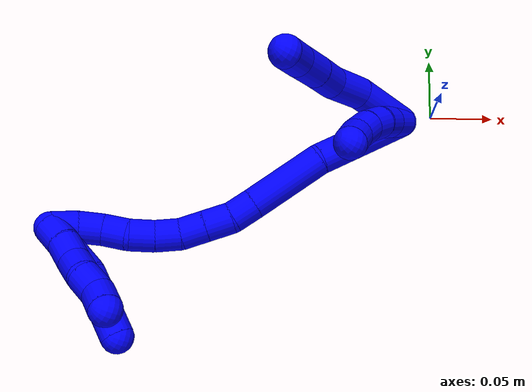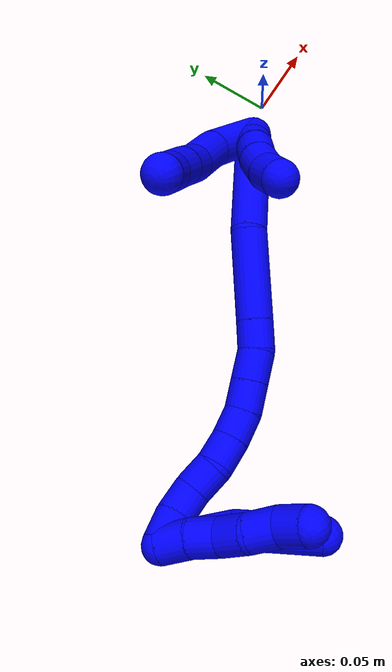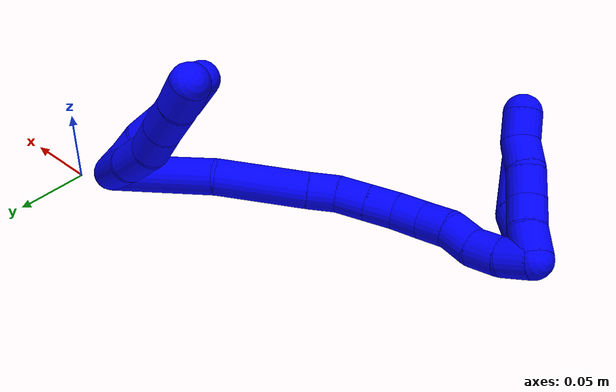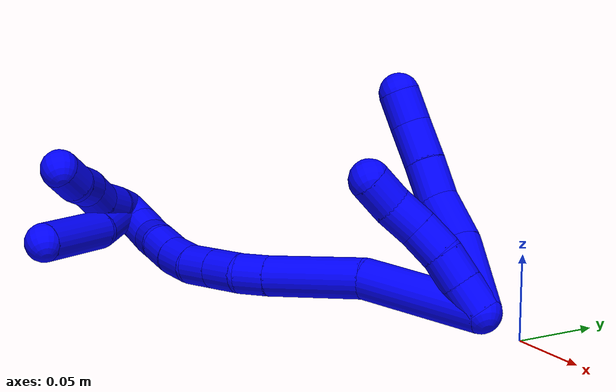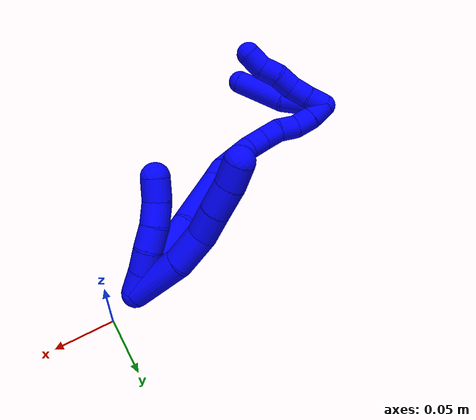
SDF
<sdf version="1.7">
 <world name="default">
  <model name="1">
   <static>0</static>
   <link name="1">
    <collision name="collision-cylinder-e_1_2_8">
     <pose>0.001061 0.001206 0.024429 -0.049325 0.043352 -0.00107</pose>
     <geometry><cylinder><radius>0.0125</radius><length>0.048963</length></cylinder></geometry>
     <surface>
      <friction><ode><mu>1.16</mu><mu2>1.16</mu2><slip1>0</slip1><slip2>0</slip2></ode></friction>
      <contact><ode><kp>1e+06</kp><kd>1</kd><max_vel>0</max_vel><min_depth>0.001</min_depth></ode></contact>
     </surface>
    </collision>
    <visual name="visual-cylinder-e_1_2_8">
     <pose>0.001061 0.001206 0.024429 -0.049325 0.043352 -0.00107</pose>
     <geometry><cylinder><radius>0.0125</radius><length>0.048963</length></cylinder></geometry>
     <material><ambient>0 0 1 1</ambient></material>
    </visual>
    <collision name="collision-cylinder-e_2_8_9">
     <pose>0.002393 -0.000683 0.064047 0.200997 0.017505 0.001765</pose>
     <geometry><cylinder><radius>0.0125</radius><length>0.031008</length></cylinder></geometry>
     <surface>
      <friction><ode><mu>1.16</mu><mu2>1.16</mu2><slip1>0</slip1><slip2>0</slip2></ode></friction>
      <contact><ode><kp>1e+06</kp><kd>1</kd><max_vel>0</max_vel><min_depth>0.001</min_depth></ode></contact>
     </surface>
    </collision>
    <visual name="visual-cylinder-e_2_8_9">
     <pose>0.002393 -0.000683 0.064047 0.200997 0.017505 0.001765</pose>
     <geometry><cylinder><radius>0.0125</radius><length>0.031008</length></cylinder></geometry>
     <material><ambient>0 0 1 1</ambient></material>
    </visual>
    <collision name="collision-cylinder-e_3_9_10">
     <pose>0.00589 -0.007187 0.090439 0.295392 0.268801 0.040229</pose>
     <geometry><cylinder><radius>0.0125</radius><length>0.024292</length></cylinder></geometry>
     <surface>
      <friction><ode><mu>1.16</mu><mu2>1.16</mu2><slip1>0</slip1><slip2>0</slip2></ode></friction>
      <contact><ode><kp>1e+06</kp><kd>1</kd><max_vel>0</max_vel><min_depth>0.001</min_depth></ode></contact>
     </surface>
    </collision>
    <visual name="visual-cylinder-e_3_9_10">
     <pose>0.00589 -0.007187 0.090439 0.295392 0.268801 0.040229</pose>
     <geometry><cylinder><radius>0.0125</radius><length>0.024292</length></cylinder></geometry>
     <material><ambient>0 0 1 1</ambient></material>
    </visual>
    <collision name="collision-cylinder-e_4_10_11">
     <pose>0.012008 -0.014117 0.113309 0.293156 0.232999 0.034552</pose>
     <geometry><cylinder><radius>0.0125</radius><length>0.025051</length></cylinder></geometry>
     <surface>
      <friction><ode><mu>1.16</mu><mu2>1.16</mu2><slip1>0</slip1><slip2>0</slip2></ode></friction>
      <contact><ode><kp>1e+06</kp><kd>1</kd><max_vel>0</max_vel><min_depth>0.001</min_depth></ode></contact>
     </surface>
    </collision>
    <visual name="visual-cylinder-e_4_10_11">
     <pose>0.012008 -0.014117 0.113309 0.293156 0.232999 0.034552</pose>
     <geometry><cylinder><radius>0.0125</radius><length>0.025051</length></cylinder></geometry>
     <material><ambient>0 0 1 1</ambient></material>
    </visual>
    <collision name="collision-cylinder-e_5_11_6">
     <pose>0.018158 -0.021445 0.134025 0.398172 0.320372 0.065173</pose>
     <geometry><cylinder><radius>0.0125</radius><length>0.020685</length></cylinder></geometry>
     <surface>
      <friction><ode><mu>1.16</mu><mu2>1.16</mu2><slip1>0</slip1><slip2>0</slip2></ode></friction>
      <contact><ode><kp>1e+06</kp><kd>1</kd><max_vel>0</max_vel><min_depth>0.001</min_depth></ode></contact>
     </surface>
    </collision>
    <visual name="visual-cylinder-e_5_11_6">
     <pose>0.018158 -0.021445 0.134025 0.398172 0.320372 0.065173</pose>
     <geometry><cylinder><radius>0.0125</radius><length>0.020685</length></cylinder></geometry>
     <material><ambient>0 0 1 1</ambient></material>
    </visual>
    <collision name="collision-cylinder-e_1_2_12">
     <pose>0.001103 -0.005106 0.008527 0.539515 0.110496 0.030581</pose>
     <geometry><cylinder><radius>0.0125</radius><length>0.02</length></cylinder></geometry>
     <surface>
      <friction><ode><mu>1.16</mu><mu2>1.16</mu2><slip1>0</slip1><slip2>0</slip2></ode></friction>
      <contact><ode><kp>1e+06</kp><kd>1</kd><max_vel>0</max_vel><min_depth>0.001</min_depth></ode></contact>
     </surface>
    </collision>
    <visual name="visual-cylinder-e_1_2_12">
     <pose>0.001103 -0.005106 0.008527 0.539515 0.110496 0.030581</pose>
     <geometry><cylinder><radius>0.0125</radius><length>0.02</length></cylinder></geometry>
     <material><ambient>0 0 1 1</ambient></material>
    </visual>
    <collision name="collision-cylinder-e_2_12_13">
     <pose>0.003955 -0.015775 0.025178 0.600463 0.175883 0.054579</pose>
     <geometry><cylinder><radius>0.0125</radius><length>0.02</length></cylinder></geometry>
     <surface>
      <friction><ode><mu>1.16</mu><mu2>1.16</mu2><slip1>0</slip1><slip2>0</slip2></ode></friction>
      <contact><ode><kp>1e+06</kp><kd>1</kd><max_vel>0</max_vel><min_depth>0.001</min_depth></ode></contact>
     </surface>
    </collision>
    <visual name="visual-cylinder-e_2_12_13">
     <pose>0.003955 -0.015775 0.025178 0.600463 0.175883 0.054579</pose>
     <geometry><cylinder><radius>0.0125</radius><length>0.02</length></cylinder></geometry>
     <material><ambient>0 0 1 1</ambient></material>
    </visual>
    <collision name="collision-cylinder-e_3_13_14">
     <pose>0.00571 -0.027442 0.041222 0.656551 0.000508 0.000173</pose>
     <geometry><cylinder><radius>0.0125</radius><length>0.02</length></cylinder></geometry>
     <surface>
      <friction><ode><mu>1.16</mu><mu2>1.16</mu2><slip1>0</slip1><slip2>0</slip2></ode></friction>
      <contact><ode><kp>1e+06</kp><kd>1</kd><max_vel>0</max_vel><min_depth>0.001</min_depth></ode></contact>
     </surface>
    </collision>
    <visual name="visual-cylinder-e_3_13_14">
     <pose>0.00571 -0.027442 0.041222 0.656551 0.000508 0.000173</pose>
     <geometry><cylinder><radius>0.0125</radius><length>0.02</length></cylinder></geometry>
     <material><ambient>0 0 1 1</ambient></material>
    </visual>
    <collision name="collision-cylinder-e_4_14_15">
     <pose>0.005777 -0.040984 0.055827 0.838829 0.006204 0.002766</pose>
     <geometry><cylinder><radius>0.0125</radius><length>0.02</length></cylinder></geometry>
     <surface>
      <friction><ode><mu>1.16</mu><mu2>1.16</mu2><slip1>0</slip1><slip2>0</slip2></ode></friction>
      <contact><ode><kp>1e+06</kp><kd>1</kd><max_vel>0</max_vel><min_depth>0.001</min_depth></ode></contact>
     </surface>
    </collision>
    <visual name="visual-cylinder-e_4_14_15">
     <pose>0.005777 -0.040984 0.055827 0.838829 0.006204 0.002766</pose>
     <geometry><cylinder><radius>0.0125</radius><length>0.02</length></cylinder></geometry>
     <material><ambient>0 0 1 1</ambient></material>
    </visual>
    <collision name="collision-cylinder-e_5_15_5">
     <pose>0.007852 -0.056289 0.068347 0.932385 0.202671 0.102243</pose>
     <geometry><cylinder><radius>0.0125</radius><length>0.02</length></cylinder></geometry>
     <surface>
      <friction><ode><mu>1.16</mu><mu2>1.16</mu2><slip1>0</slip1><slip2>0</slip2></ode></friction>
      <contact><ode><kp>1e+06</kp><kd>1</kd><max_vel>0</max_vel><min_depth>0.001</min_depth></ode></contact>
     </surface>
    </collision>
    <visual name="visual-cylinder-e_5_15_5">
     <pose>0.007852 -0.056289 0.068347 0.932385 0.202671 0.102243</pose>
     <geometry><cylinder><radius>0.0125</radius><length>0.02</length></cylinder></geometry>
     <material><ambient>0 0 1 1</ambient></material>
    </visual>
    <collision name="collision-cylinder-e_1_2_16">
     <pose>-0.022949 -0.016901 0.025202 0.590737 -0.647508 -0.203496</pose>
     <geometry><cylinder><radius>0.0125</radius><length>0.076092</length></cylinder></geometry>
     <surface>
      <friction><ode><mu>1.16</mu><mu2>1.16</mu2><slip1>0</slip1><slip2>0</slip2></ode></friction>
      <contact><ode><kp>1e+06</kp><kd>1</kd><max_vel>0</max_vel><min_depth>0.001</min_depth></ode></contact>
     </surface>
    </collision>
    <visual name="visual-cylinder-e_1_2_16">
     <pose>-0.022949 -0.016901 0.025202 0.590737 -0.647508 -0.203496</pose>
     <geometry><cylinder><radius>0.0125</radius><length>0.076092</length></cylinder></geometry>
     <material><ambient>0 0 1 1</ambient></material>
    </visual>
    <collision name="collision-cylinder-e_2_16_17">
     <pose>-0.069117 -0.048439 0.065202 0.779923 -0.839968 -0.363035</pose>
     <geometry><cylinder><radius>0.0125</radius><length>0.062363</length></cylinder></geometry>
     <surface>
      <friction><ode><mu>1.16</mu><mu2>1.16</mu2><slip1>0</slip1><slip2>0</slip2></ode></friction>
      <contact><ode><kp>1e+06</kp><kd>1</kd><max_vel>0</max_vel><min_depth>0.001</min_depth></ode></contact>
     </surface>
    </collision>
    <visual name="visual-cylinder-e_2_16_17">
     <pose>-0.069117 -0.048439 0.065202 0.779923 -0.839968 -0.363035</pose>
     <geometry><cylinder><radius>0.0125</radius><length>0.062363</length></cylinder></geometry>
     <material><ambient>0 0 1 1</ambient></material>
    </visual>
    <collision name="collision-cylinder-e_3_17_18">
     <pose>-0.09948 -0.06788 0.085149 0.750761 -0.79264 -0.326862</pose>
     <geometry><cylinder><radius>0.0125</radius><length>0.020065</length></cylinder></geometry>
     <surface>
      <friction><ode><mu>1.16</mu><mu2>1.16</mu2><slip1>0</slip1><slip2>0</slip2></ode></friction>
      <contact><ode><kp>1e+06</kp><kd>1</kd><max_vel>0</max_vel><min_depth>0.001</min_depth></ode></contact>
     </surface>
    </collision>
    <visual name="visual-cylinder-e_3_17_18">
     <pose>-0.09948 -0.06788 0.085149 0.750761 -0.79264 -0.326862</pose>
     <geometry><cylinder><radius>0.0125</radius><length>0.020065</length></cylinder></geometry>
     <material><ambient>0 0 1 1</ambient></material>
    </visual>
    <collision name="collision-cylinder-e_4_18_19">
     <pose>-0.114319 -0.075281 0.097166 0.361567 -0.808763 -0.156129</pose>
     <geometry><cylinder><radius>0.0125</radius><length>0.021271</length></cylinder></geometry>
     <surface>
      <friction><ode><mu>1.16</mu><mu2>1.16</mu2><slip1>0</slip1><slip2>0</slip2></ode></friction>
      <contact><ode><kp>1e+06</kp><kd>1</kd><max_vel>0</max_vel><min_depth>0.001</min_depth></ode></contact>
     </surface>
    </collision>
    <visual name="visual-cylinder-e_4_18_19">
     <pose>-0.114319 -0.075281 0.097166 0.361567 -0.808763 -0.156129</pose>
     <geometry><cylinder><radius>0.0125</radius><length>0.021271</length></cylinder></geometry>
     <material><ambient>0 0 1 1</ambient></material>
    </visual>
    <collision name="collision-cylinder-e_5_19_20">
     <pose>-0.12931 -0.080364 0.110524 0.365668 -0.809723 -0.158141</pose>
     <geometry><cylinder><radius>0.0125</radius><length>0.020154</length></cylinder></geometry>
     <surface>
      <friction><ode><mu>1.16</mu><mu2>1.16</mu2><slip1>0</slip1><slip2>0</slip2></ode></friction>
      <contact><ode><kp>1e+06</kp><kd>1</kd><max_vel>0</max_vel><min_depth>0.001</min_depth></ode></contact>
     </surface>
    </collision>
    <visual name="visual-cylinder-e_5_19_20">
     <pose>-0.12931 -0.080364 0.110524 0.365668 -0.809723 -0.158141</pose>
     <geometry><cylinder><radius>0.0125</radius><length>0.020154</length></cylinder></geometry>
     <material><ambient>0 0 1 1</ambient></material>
    </visual>
    <collision name="collision-cylinder-e_6_20_21">
     <pose>-0.142746 -0.083665 0.12488 0.103389 -0.660182 -0.035452</pose>
     <geometry><cylinder><radius>0.0125</radius><length>0.020022</length></cylinder></geometry>
     <surface>
      <friction><ode><mu>1.16</mu><mu2>1.16</mu2><slip1>0</slip1><slip2>0</slip2></ode></friction>
      <contact><ode><kp>1e+06</kp><kd>1</kd><max_vel>0</max_vel><min_depth>0.001</min_depth></ode></contact>
     </surface>
    </collision>
    <visual name="visual-cylinder-e_6_20_21">
     <pose>-0.142746 -0.083665 0.12488 0.103389 -0.660182 -0.035452</pose>
     <geometry><cylinder><radius>0.0125</radius><length>0.020022</length></cylinder></geometry>
     <material><ambient>0 0 1 1</ambient></material>
    </visual>
    <collision name="collision-cylinder-e_7_21_22">
     <pose>-0.153916 -0.084648 0.1414 0.01928 -0.526439 -0.005195</pose>
     <geometry><cylinder><radius>0.0125</radius><length>0.020025</length></cylinder></geometry>
     <surface>
      <friction><ode><mu>1.16</mu><mu2>1.16</mu2><slip1>0</slip1><slip2>0</slip2></ode></friction>
      <contact><ode><kp>1e+06</kp><kd>1</kd><max_vel>0</max_vel><min_depth>0.001</min_depth></ode></contact>
     </surface>
    </collision>
    <visual name="visual-cylinder-e_7_21_22">
     <pose>-0.153916 -0.084648 0.1414 0.01928 -0.526439 -0.005195</pose>
     <geometry><cylinder><radius>0.0125</radius><length>0.020025</length></cylinder></geometry>
     <material><ambient>0 0 1 1</ambient></material>
    </visual>
    <collision name="collision-cylinder-e_8_22_23">
     <pose>-0.165016 -0.082278 0.157589 -0.324786 -0.652097 0.110678</pose>
     <geometry><cylinder><radius>0.0125</radius><length>0.020004</length></cylinder></geometry>
     <surface>
      <friction><ode><mu>1.16</mu><mu2>1.16</mu2><slip1>0</slip1><slip2>0</slip2></ode></friction>
      <contact><ode><kp>1e+06</kp><kd>1</kd><max_vel>0</max_vel><min_depth>0.001</min_depth></ode></contact>
     </surface>
    </collision>
    <visual name="visual-cylinder-e_8_22_23">
     <pose>-0.165016 -0.082278 0.157589 -0.324786 -0.652097 0.110678</pose>
     <geometry><cylinder><radius>0.0125</radius><length>0.020004</length></cylinder></geometry>
     <material><ambient>0 0 1 1</ambient></material>
    </visual>
    <collision name="collision-cylinder-e_9_23_24">
     <pose>-0.175643 -0.079549 0.174024 -0.021541 -0.4731 0.005193</pose>
     <geometry><cylinder><radius>0.0125</radius><length>0.020001</length></cylinder></geometry>
     <surface>
      <friction><ode><mu>1.16</mu><mu2>1.16</mu2><slip1>0</slip1><slip2>0</slip2></ode></friction>
      <contact><ode><kp>1e+06</kp><kd>1</kd><max_vel>0</max_vel><min_depth>0.001</min_depth></ode></contact>
     </surface>
    </collision>
    <visual name="visual-cylinder-e_9_23_24">
     <pose>-0.175643 -0.079549 0.174024 -0.021541 -0.4731 0.005193</pose>
     <geometry><cylinder><radius>0.0125</radius><length>0.020001</length></cylinder></geometry>
     <material><ambient>0 0 1 1</ambient></material>
    </visual>
    <collision name="collision-cylinder-e_10_24_1">
     <pose>-0.183867 -0.081389 0.192005 0.220091 -0.375418 -0.041969</pose>
     <geometry><cylinder><radius>0.0125</radius><length>0.020005</length></cylinder></geometry>
     <surface>
      <friction><ode><mu>1.16</mu><mu2>1.16</mu2><slip1>0</slip1><slip2>0</slip2></ode></friction>
      <contact><ode><kp>1e+06</kp><kd>1</kd><max_vel>0</max_vel><min_depth>0.001</min_depth></ode></contact>
     </surface>
    </collision>
    <visual name="visual-cylinder-e_10_24_1">
     <pose>-0.183867 -0.081389 0.192005 0.220091 -0.375418 -0.041969</pose>
     <geometry><cylinder><radius>0.0125</radius><length>0.020005</length></cylinder></geometry>
     <material><ambient>0 0 1 1</ambient></material>
    </visual>
    <collision name="collision-cylinder-e_1_1_25">
     <pose>-0.182602 -0.091266 0.197329 2.01749 0.515898 0.793385</pose>
     <geometry><cylinder><radius>0.0125</radius><length>0.02</length></cylinder></geometry>
     <surface>
      <friction><ode><mu>1.16</mu><mu2>1.16</mu2><slip1>0</slip1><slip2>0</slip2></ode></friction>
      <contact><ode><kp>1e+06</kp><kd>1</kd><max_vel>0</max_vel><min_depth>0.001</min_depth></ode></contact>
     </surface>
    </collision>
    <visual name="visual-cylinder-e_1_1_25">
     <pose>-0.182602 -0.091266 0.197329 2.01749 0.515898 0.793385</pose>
     <geometry><cylinder><radius>0.0125</radius><length>0.02</length></cylinder></geometry>
     <material><ambient>0 0 1 1</ambient></material>
    </visual>
    <collision name="collision-cylinder-e_2_25_26">
     <pose>-0.173987 -0.107837 0.190361 1.92334 0.377019 0.533879</pose>
     <geometry><cylinder><radius>0.0125</radius><length>0.02</length></cylinder></geometry>
     <surface>
      <friction><ode><mu>1.16</mu><mu2>1.16</mu2><slip1>0</slip1><slip2>0</slip2></ode></friction>
      <contact><ode><kp>1e+06</kp><kd>1</kd><max_vel>0</max_vel><min_depth>0.001</min_depth></ode></contact>
     </surface>
    </collision>
    <visual name="visual-cylinder-e_2_25_26">
     <pose>-0.173987 -0.107837 0.190361 1.92334 0.377019 0.533879</pose>
     <geometry><cylinder><radius>0.0125</radius><length>0.02</length></cylinder></geometry>
     <material><ambient>0 0 1 1</ambient></material>
    </visual>
    <collision name="collision-cylinder-e_3_26_27">
     <pose>-0.164595 -0.124681 0.185931 1.71992 0.607744 0.698566</pose>
     <geometry><cylinder><radius>0.0125</radius><length>0.02</length></cylinder></geometry>
     <surface>
      <friction><ode><mu>1.16</mu><mu2>1.16</mu2><slip1>0</slip1><slip2>0</slip2></ode></friction>
      <contact><ode><kp>1e+06</kp><kd>1</kd><max_vel>0</max_vel><min_depth>0.001</min_depth></ode></contact>
     </surface>
    </collision>
    <visual name="visual-cylinder-e_3_26_27">
     <pose>-0.164595 -0.124681 0.185931 1.71992 0.607744 0.698566</pose>
     <geometry><cylinder><radius>0.0125</radius><length>0.02</length></cylinder></geometry>
     <material><ambient>0 0 1 1</ambient></material>
    </visual>
    <collision name="collision-cylinder-e_4_27_28">
     <pose>-0.154075 -0.140648 0.180805 2.03255 0.50184 0.7848</pose>
     <geometry><cylinder><radius>0.0125</radius><length>0.02</length></cylinder></geometry>
     <surface>
      <friction><ode><mu>1.16</mu><mu2>1.16</mu2><slip1>0</slip1><slip2>0</slip2></ode></friction>
      <contact><ode><kp>1e+06</kp><kd>1</kd><max_vel>0</max_vel><min_depth>0.001</min_depth></ode></contact>
     </surface>
    </collision>
    <visual name="visual-cylinder-e_4_27_28">
     <pose>-0.154075 -0.140648 0.180805 2.03255 0.50184 0.7848</pose>
     <geometry><cylinder><radius>0.0125</radius><length>0.02</length></cylinder></geometry>
     <material><ambient>0 0 1 1</ambient></material>
    </visual>
    <collision name="collision-cylinder-e_5_28_4">
     <pose>-0.144123 -0.157057 0.176364 1.63317 0.539967 0.572924</pose>
     <geometry><cylinder><radius>0.0125</radius><length>0.02</length></cylinder></geometry>
     <surface>
      <friction><ode><mu>1.16</mu><mu2>1.16</mu2><slip1>0</slip1><slip2>0</slip2></ode></friction>
      <contact><ode><kp>1e+06</kp><kd>1</kd><max_vel>0</max_vel><min_depth>0.001</min_depth></ode></contact>
     </surface>
    </collision>
    <visual name="visual-cylinder-e_5_28_4">
     <pose>-0.144123 -0.157057 0.176364 1.63317 0.539967 0.572924</pose>
     <geometry><cylinder><radius>0.0125</radius><length>0.02</length></cylinder></geometry>
     <material><ambient>0 0 1 1</ambient></material>
    </visual>
    <collision name="collision-cylinder-e_1_1_29">
     <pose>-0.183481 -0.099522 0.185406 2.34296 0.178438 0.417794</pose>
     <geometry><cylinder><radius>0.0125</radius><length>0.045676</length></cylinder></geometry>
     <surface>
      <friction><ode><mu>1.16</mu><mu2>1.16</mu2><slip1>0</slip1><slip2>0</slip2></ode></friction>
      <contact><ode><kp>1e+06</kp><kd>1</kd><max_vel>0</max_vel><min_depth>0.001</min_depth></ode></contact>
     </surface>
    </collision>
    <visual name="visual-cylinder-e_1_1_29">
     <pose>-0.183481 -0.099522 0.185406 2.34296 0.178438 0.417794</pose>
     <geometry><cylinder><radius>0.0125</radius><length>0.045676</length></cylinder></geometry>
     <material><ambient>0 0 1 1</ambient></material>
    </visual>
    <collision name="collision-cylinder-e_2_29_3">
     <pose>-0.176687 -0.139571 0.157204 2.05254 0.101062 0.166635</pose>
     <geometry><cylinder><radius>0.0125</radius><length>0.054324</length></cylinder></geometry>
     <surface>
      <friction><ode><mu>1.16</mu><mu2>1.16</mu2><slip1>0</slip1><slip2>0</slip2></ode></friction>
      <contact><ode><kp>1e+06</kp><kd>1</kd><max_vel>0</max_vel><min_depth>0.001</min_depth></ode></contact>
     </surface>
    </collision>
    <visual name="visual-cylinder-e_2_29_3">
     <pose>-0.176687 -0.139571 0.157204 2.05254 0.101062 0.166635</pose>
     <geometry><cylinder><radius>0.0125</radius><length>0.054324</length></cylinder></geometry>
     <material><ambient>0 0 1 1</ambient></material>
    </visual>
    <collision name="collision-sphere-3">
     <pose>-0.173947 -0.163519 0.144683 0 -0 0</pose>
     <geometry><sphere><radius>0.0125</radius></sphere></geometry>
     <surface>
      <friction><ode><mu>1.16</mu><mu2>1.16</mu2><slip1>0</slip1><slip2>0</slip2></ode></friction>
      <contact><ode><kp>1e+06</kp><kd>1</kd><max_vel>0</max_vel><min_depth>0.001</min_depth></ode></contact>
     </surface>
    </collision>
    <visual name="visual-sphere-3">
     <pose>-0.173947 -0.163519 0.144683 0 -0 0</pose>
     <geometry><sphere><radius>0.0125</radius></sphere></geometry>
     <material><ambient>0 0 1 1</ambient></material>
    </visual>
    <collision name="collision-sphere-29">
     <pose>-0.179428 -0.115623 0.169725 0 -0 0</pose>
     <geometry><sphere><radius>0.0125</radius></sphere></geometry>
     <surface>
      <friction><ode><mu>1.16</mu><mu2>1.16</mu2><slip1>0</slip1><slip2>0</slip2></ode></friction>
      <contact><ode><kp>1e+06</kp><kd>1</kd><max_vel>0</max_vel><min_depth>0.001</min_depth></ode></contact>
     </surface>
    </collision>
    <visual name="visual-sphere-29">
     <pose>-0.179428 -0.115623 0.169725 0 -0 0</pose>
     <geometry><sphere><radius>0.0125</radius></sphere></geometry>
     <material><ambient>0 0 1 1</ambient></material>
    </visual>
    <collision name="collision-sphere-4">
     <pose>-0.138982 -0.165618 0.17583 0 -0 0</pose>
     <geometry><sphere><radius>0.0125</radius></sphere></geometry>
     <surface>
      <friction><ode><mu>1.16</mu><mu2>1.16</mu2><slip1>0</slip1><slip2>0</slip2></ode></friction>
      <contact><ode><kp>1e+06</kp><kd>1</kd><max_vel>0</max_vel><min_depth>0.001</min_depth></ode></contact>
     </surface>
    </collision>
    <visual name="visual-sphere-4">
     <pose>-0.138982 -0.165618 0.17583 0 -0 0</pose>
     <geometry><sphere><radius>0.0125</radius></sphere></geometry>
     <material><ambient>0 0 1 1</ambient></material>
    </visual>
    <collision name="collision-sphere-28">
     <pose>-0.149264 -0.148497 0.176899 0 -0 0</pose>
     <geometry><sphere><radius>0.0125</radius></sphere></geometry>
     <surface>
      <friction><ode><mu>1.16</mu><mu2>1.16</mu2><slip1>0</slip1><slip2>0</slip2></ode></friction>
      <contact><ode><kp>1e+06</kp><kd>1</kd><max_vel>0</max_vel><min_depth>0.001</min_depth></ode></contact>
     </surface>
    </collision>
    <visual name="visual-sphere-28">
     <pose>-0.149264 -0.148497 0.176899 0 -0 0</pose>
     <geometry><sphere><radius>0.0125</radius></sphere></geometry>
     <material><ambient>0 0 1 1</ambient></material>
    </visual>
    <collision name="collision-sphere-27">
     <pose>-0.158885 -0.132799 0.184711 0 -0 0</pose>
     <geometry><sphere><radius>0.0125</radius></sphere></geometry>
     <surface>
      <friction><ode><mu>1.16</mu><mu2>1.16</mu2><slip1>0</slip1><slip2>0</slip2></ode></friction>
      <contact><ode><kp>1e+06</kp><kd>1</kd><max_vel>0</max_vel><min_depth>0.001</min_depth></ode></contact>
     </surface>
    </collision>
    <visual name="visual-sphere-27">
     <pose>-0.158885 -0.132799 0.184711 0 -0 0</pose>
     <geometry><sphere><radius>0.0125</radius></sphere></geometry>
     <material><ambient>0 0 1 1</ambient></material>
    </visual>
    <collision name="collision-sphere-26">
     <pose>-0.170305 -0.116562 0.18715 0 -0 0</pose>
     <geometry><sphere><radius>0.0125</radius></sphere></geometry>
     <surface>
      <friction><ode><mu>1.16</mu><mu2>1.16</mu2><slip1>0</slip1><slip2>0</slip2></ode></friction>
      <contact><ode><kp>1e+06</kp><kd>1</kd><max_vel>0</max_vel><min_depth>0.001</min_depth></ode></contact>
     </surface>
    </collision>
    <visual name="visual-sphere-26">
     <pose>-0.170305 -0.116562 0.18715 0 -0 0</pose>
     <geometry><sphere><radius>0.0125</radius></sphere></geometry>
     <material><ambient>0 0 1 1</ambient></material>
    </visual>
    <collision name="collision-sphere-25">
     <pose>-0.177668 -0.099111 0.193571 0 -0 0</pose>
     <geometry><sphere><radius>0.0125</radius></sphere></geometry>
     <surface>
      <friction><ode><mu>1.16</mu><mu2>1.16</mu2><slip1>0</slip1><slip2>0</slip2></ode></friction>
      <contact><ode><kp>1e+06</kp><kd>1</kd><max_vel>0</max_vel><min_depth>0.001</min_depth></ode></contact>
     </surface>
    </collision>
    <visual name="visual-sphere-25">
     <pose>-0.177668 -0.099111 0.193571 0 -0 0</pose>
     <geometry><sphere><radius>0.0125</radius></sphere></geometry>
     <material><ambient>0 0 1 1</ambient></material>
    </visual>
    <collision name="collision-sphere-1">
     <pose>-0.187535 -0.083421 0.201086 0 -0 0</pose>
     <geometry><sphere><radius>0.0125</radius></sphere></geometry>
     <surface>
      <friction><ode><mu>1.16</mu><mu2>1.16</mu2><slip1>0</slip1><slip2>0</slip2></ode></friction>
      <contact><ode><kp>1e+06</kp><kd>1</kd><max_vel>0</max_vel><min_depth>0.001</min_depth></ode></contact>
     </surface>
    </collision>
    <visual name="visual-sphere-1">
     <pose>-0.187535 -0.083421 0.201086 0 -0 0</pose>
     <geometry><sphere><radius>0.0125</radius></sphere></geometry>
     <material><ambient>0 0 1 1</ambient></material>
    </visual>
    <collision name="collision-sphere-24">
     <pose>-0.1802 -0.079358 0.182924 0 -0 0</pose>
     <geometry><sphere><radius>0.0125</radius></sphere></geometry>
     <surface>
      <friction><ode><mu>1.16</mu><mu2>1.16</mu2><slip1>0</slip1><slip2>0</slip2></ode></friction>
      <contact><ode><kp>1e+06</kp><kd>1</kd><max_vel>0</max_vel><min_depth>0.001</min_depth></ode></contact>
     </surface>
    </collision>
    <visual name="visual-sphere-24">
     <pose>-0.1802 -0.079358 0.182924 0 -0 0</pose>
     <geometry><sphere><radius>0.0125</radius></sphere></geometry>
     <material><ambient>0 0 1 1</ambient></material>
    </visual>
    <collision name="collision-sphere-23">
     <pose>-0.171086 -0.079741 0.165123 0 -0 0</pose>
     <geometry><sphere><radius>0.0125</radius></sphere></geometry>
     <surface>
      <friction><ode><mu>1.16</mu><mu2>1.16</mu2><slip1>0</slip1><slip2>0</slip2></ode></friction>
      <contact><ode><kp>1e+06</kp><kd>1</kd><max_vel>0</max_vel><min_depth>0.001</min_depth></ode></contact>
     </surface>
    </collision>
    <visual name="visual-sphere-23">
     <pose>-0.171086 -0.079741 0.165123 0 -0 0</pose>
     <geometry><sphere><radius>0.0125</radius></sphere></geometry>
     <material><ambient>0 0 1 1</ambient></material>
    </visual>
    <collision name="collision-sphere-22">
     <pose>-0.158946 -0.084815 0.150055 0 -0 0</pose>
     <geometry><sphere><radius>0.0125</radius></sphere></geometry>
     <surface>
      <friction><ode><mu>1.16</mu><mu2>1.16</mu2><slip1>0</slip1><slip2>0</slip2></ode></friction>
      <contact><ode><kp>1e+06</kp><kd>1</kd><max_vel>0</max_vel><min_depth>0.001</min_depth></ode></contact>
     </surface>
    </collision>
    <visual name="visual-sphere-22">
     <pose>-0.158946 -0.084815 0.150055 0 -0 0</pose>
     <geometry><sphere><radius>0.0125</radius></sphere></geometry>
     <material><ambient>0 0 1 1</ambient></material>
    </visual>
    <collision name="collision-sphere-21">
     <pose>-0.148885 -0.084481 0.132745 0 -0 0</pose>
     <geometry><sphere><radius>0.0125</radius></sphere></geometry>
     <surface>
      <friction><ode><mu>1.16</mu><mu2>1.16</mu2><slip1>0</slip1><slip2>0</slip2></ode></friction>
      <contact><ode><kp>1e+06</kp><kd>1</kd><max_vel>0</max_vel><min_depth>0.001</min_depth></ode></contact>
     </surface>
    </collision>
    <visual name="visual-sphere-21">
     <pose>-0.148885 -0.084481 0.132745 0 -0 0</pose>
     <geometry><sphere><radius>0.0125</radius></sphere></geometry>
     <material><ambient>0 0 1 1</ambient></material>
    </visual>
    <collision name="collision-sphere-6">
     <pose>0.021415 -0.025252 0.143074 0 -0 0</pose>
     <geometry><sphere><radius>0.0125</radius></sphere></geometry>
     <surface>
      <friction><ode><mu>1.16</mu><mu2>1.16</mu2><slip1>0</slip1><slip2>0</slip2></ode></friction>
      <contact><ode><kp>1e+06</kp><kd>1</kd><max_vel>0</max_vel><min_depth>0.001</min_depth></ode></contact>
     </surface>
    </collision>
    <visual name="visual-sphere-6">
     <pose>0.021415 -0.025252 0.143074 0 -0 0</pose>
     <geometry><sphere><radius>0.0125</radius></sphere></geometry>
     <material><ambient>0 0 1 1</ambient></material>
    </visual>
    <collision name="collision-sphere-11">
     <pose>0.0149 -0.017639 0.124977 0 -0 0</pose>
     <geometry><sphere><radius>0.0125</radius></sphere></geometry>
     <surface>
      <friction><ode><mu>1.16</mu><mu2>1.16</mu2><slip1>0</slip1><slip2>0</slip2></ode></friction>
      <contact><ode><kp>1e+06</kp><kd>1</kd><max_vel>0</max_vel><min_depth>0.001</min_depth></ode></contact>
     </surface>
    </collision>
    <visual name="visual-sphere-11">
     <pose>0.0149 -0.017639 0.124977 0 -0 0</pose>
     <geometry><sphere><radius>0.0125</radius></sphere></geometry>
     <material><ambient>0 0 1 1</ambient></material>
    </visual>
    <collision name="collision-sphere-10">
     <pose>0.009116 -0.010596 0.101642 0 -0 0</pose>
     <geometry><sphere><radius>0.0125</radius></sphere></geometry>
     <surface>
      <friction><ode><mu>1.16</mu><mu2>1.16</mu2><slip1>0</slip1><slip2>0</slip2></ode></friction>
      <contact><ode><kp>1e+06</kp><kd>1</kd><max_vel>0</max_vel><min_depth>0.001</min_depth></ode></contact>
     </surface>
    </collision>
    <visual name="visual-sphere-10">
     <pose>0.009116 -0.010596 0.101642 0 -0 0</pose>
     <geometry><sphere><radius>0.0125</radius></sphere></geometry>
     <material><ambient>0 0 1 1</ambient></material>
    </visual>
    <collision name="collision-sphere-9">
     <pose>0.002665 -0.003778 0.079236 0 -0 0</pose>
     <geometry><sphere><radius>0.0125</radius></sphere></geometry>
     <surface>
      <friction><ode><mu>1.16</mu><mu2>1.16</mu2><slip1>0</slip1><slip2>0</slip2></ode></friction>
      <contact><ode><kp>1e+06</kp><kd>1</kd><max_vel>0</max_vel><min_depth>0.001</min_depth></ode></contact>
     </surface>
    </collision>
    <visual name="visual-sphere-9">
     <pose>0.002665 -0.003778 0.079236 0 -0 0</pose>
     <geometry><sphere><radius>0.0125</radius></sphere></geometry>
     <material><ambient>0 0 1 1</ambient></material>
    </visual>
    <collision name="collision-sphere-2">
     <geometry><sphere><radius>0.0125</radius></sphere></geometry>
     <surface>
      <friction><ode><mu>1.16</mu><mu2>1.16</mu2><slip1>0</slip1><slip2>0</slip2></ode></friction>
      <contact><ode><kp>1e+06</kp><kd>1</kd><max_vel>0</max_vel><min_depth>0.001</min_depth></ode></contact>
     </surface>
    </collision>
    <visual name="visual-sphere-2">
     <geometry><sphere><radius>0.0125</radius></sphere></geometry>
     <material><ambient>0 0 1 1</ambient></material>
    </visual>
    <collision name="collision-sphere-19">
     <pose>-0.122013 -0.077879 0.104034 0 -0 0</pose>
     <geometry><sphere><radius>0.0125</radius></sphere></geometry>
     <surface>
      <friction><ode><mu>1.16</mu><mu2>1.16</mu2><slip1>0</slip1><slip2>0</slip2></ode></friction>
      <contact><ode><kp>1e+06</kp><kd>1</kd><max_vel>0</max_vel><min_depth>0.001</min_depth></ode></contact>
     </surface>
    </collision>
    <visual name="visual-sphere-19">
     <pose>-0.122013 -0.077879 0.104034 0 -0 0</pose>
     <geometry><sphere><radius>0.0125</radius></sphere></geometry>
     <material><ambient>0 0 1 1</ambient></material>
    </visual>
    <collision name="collision-sphere-8">
     <pose>0.002122 0.002412 0.048858 0 -0 0</pose>
     <geometry><sphere><radius>0.0125</radius></sphere></geometry>
     <surface>
      <friction><ode><mu>1.16</mu><mu2>1.16</mu2><slip1>0</slip1><slip2>0</slip2></ode></friction>
      <contact><ode><kp>1e+06</kp><kd>1</kd><max_vel>0</max_vel><min_depth>0.001</min_depth></ode></contact>
     </surface>
    </collision>
    <visual name="visual-sphere-8">
     <pose>0.002122 0.002412 0.048858 0 -0 0</pose>
     <geometry><sphere><radius>0.0125</radius></sphere></geometry>
     <material><ambient>0 0 1 1</ambient></material>
    </visual>
    <collision name="collision-sphere-12">
     <pose>0.002205 -0.010212 0.017055 0 -0 0</pose>
     <geometry><sphere><radius>0.0125</radius></sphere></geometry>
     <surface>
      <friction><ode><mu>1.16</mu><mu2>1.16</mu2><slip1>0</slip1><slip2>0</slip2></ode></friction>
      <contact><ode><kp>1e+06</kp><kd>1</kd><max_vel>0</max_vel><min_depth>0.001</min_depth></ode></contact>
     </surface>
    </collision>
    <visual name="visual-sphere-12">
     <pose>0.002205 -0.010212 0.017055 0 -0 0</pose>
     <geometry><sphere><radius>0.0125</radius></sphere></geometry>
     <material><ambient>0 0 1 1</ambient></material>
    </visual>
    <collision name="collision-sphere-13">
     <pose>0.005705 -0.021338 0.033301 0 -0 0</pose>
     <geometry><sphere><radius>0.0125</radius></sphere></geometry>
     <surface>
      <friction><ode><mu>1.16</mu><mu2>1.16</mu2><slip1>0</slip1><slip2>0</slip2></ode></friction>
      <contact><ode><kp>1e+06</kp><kd>1</kd><max_vel>0</max_vel><min_depth>0.001</min_depth></ode></contact>
     </surface>
    </collision>
    <visual name="visual-sphere-13">
     <pose>0.005705 -0.021338 0.033301 0 -0 0</pose>
     <geometry><sphere><radius>0.0125</radius></sphere></geometry>
     <material><ambient>0 0 1 1</ambient></material>
    </visual>
    <collision name="collision-sphere-14">
     <pose>0.005715 -0.033546 0.049143 0 -0 0</pose>
     <geometry><sphere><radius>0.0125</radius></sphere></geometry>
     <surface>
      <friction><ode><mu>1.16</mu><mu2>1.16</mu2><slip1>0</slip1><slip2>0</slip2></ode></friction>
      <contact><ode><kp>1e+06</kp><kd>1</kd><max_vel>0</max_vel><min_depth>0.001</min_depth></ode></contact>
     </surface>
    </collision>
    <visual name="visual-sphere-14">
     <pose>0.005715 -0.033546 0.049143 0 -0 0</pose>
     <geometry><sphere><radius>0.0125</radius></sphere></geometry>
     <material><ambient>0 0 1 1</ambient></material>
    </visual>
    <collision name="collision-sphere-15">
     <pose>0.005839 -0.048423 0.06251 0 -0 0</pose>
     <geometry><sphere><radius>0.0125</radius></sphere></geometry>
     <surface>
      <friction><ode><mu>1.16</mu><mu2>1.16</mu2><slip1>0</slip1><slip2>0</slip2></ode></friction>
      <contact><ode><kp>1e+06</kp><kd>1</kd><max_vel>0</max_vel><min_depth>0.001</min_depth></ode></contact>
     </surface>
    </collision>
    <visual name="visual-sphere-15">
     <pose>0.005839 -0.048423 0.06251 0 -0 0</pose>
     <geometry><sphere><radius>0.0125</radius></sphere></geometry>
     <material><ambient>0 0 1 1</ambient></material>
    </visual>
    <collision name="collision-sphere-5">
     <pose>0.009865 -0.064155 0.074184 0 -0 0</pose>
     <geometry><sphere><radius>0.0125</radius></sphere></geometry>
     <surface>
      <friction><ode><mu>1.16</mu><mu2>1.16</mu2><slip1>0</slip1><slip2>0</slip2></ode></friction>
      <contact><ode><kp>1e+06</kp><kd>1</kd><max_vel>0</max_vel><min_depth>0.001</min_depth></ode></contact>
     </surface>
    </collision>
    <visual name="visual-sphere-5">
     <pose>0.009865 -0.064155 0.074184 0 -0 0</pose>
     <geometry><sphere><radius>0.0125</radius></sphere></geometry>
     <material><ambient>0 0 1 1</ambient></material>
    </visual>
    <collision name="collision-sphere-16">
     <pose>-0.045899 -0.033803 0.050405 0 -0 0</pose>
     <geometry><sphere><radius>0.0125</radius></sphere></geometry>
     <surface>
      <friction><ode><mu>1.16</mu><mu2>1.16</mu2><slip1>0</slip1><slip2>0</slip2></ode></friction>
      <contact><ode><kp>1e+06</kp><kd>1</kd><max_vel>0</max_vel><min_depth>0.001</min_depth></ode></contact>
     </surface>
    </collision>
    <visual name="visual-sphere-16">
     <pose>-0.045899 -0.033803 0.050405 0 -0 0</pose>
     <geometry><sphere><radius>0.0125</radius></sphere></geometry>
     <material><ambient>0 0 1 1</ambient></material>
    </visual>
    <collision name="collision-sphere-17">
     <pose>-0.092335 -0.063075 0.08 0 -0 0</pose>
     <geometry><sphere><radius>0.0125</radius></sphere></geometry>
     <surface>
      <friction><ode><mu>1.16</mu><mu2>1.16</mu2><slip1>0</slip1><slip2>0</slip2></ode></friction>
      <contact><ode><kp>1e+06</kp><kd>1</kd><max_vel>0</max_vel><min_depth>0.001</min_depth></ode></contact>
     </surface>
    </collision>
    <visual name="visual-sphere-17">
     <pose>-0.092335 -0.063075 0.08 0 -0 0</pose>
     <geometry><sphere><radius>0.0125</radius></sphere></geometry>
     <material><ambient>0 0 1 1</ambient></material>
    </visual>
    <collision name="collision-sphere-18">
     <pose>-0.106625 -0.072684 0.090298 0 -0 0</pose>
     <geometry><sphere><radius>0.0125</radius></sphere></geometry>
     <surface>
      <friction><ode><mu>1.16</mu><mu2>1.16</mu2><slip1>0</slip1><slip2>0</slip2></ode></friction>
      <contact><ode><kp>1e+06</kp><kd>1</kd><max_vel>0</max_vel><min_depth>0.001</min_depth></ode></contact>
     </surface>
    </collision>
    <visual name="visual-sphere-18">
     <pose>-0.106625 -0.072684 0.090298 0 -0 0</pose>
     <geometry><sphere><radius>0.0125</radius></sphere></geometry>
     <material><ambient>0 0 1 1</ambient></material>
    </visual>
    <collision name="collision-sphere-20">
     <pose>-0.136606 -0.082849 0.117015 0 -0 0</pose>
     <geometry><sphere><radius>0.0125</radius></sphere></geometry>
     <surface>
      <friction><ode><mu>1.16</mu><mu2>1.16</mu2><slip1>0</slip1><slip2>0</slip2></ode></friction>
      <contact><ode><kp>1e+06</kp><kd>1</kd><max_vel>0</max_vel><min_depth>0.001</min_depth></ode></contact>
     </surface>
    </collision>
    <visual name="visual-sphere-20">
     <pose>-0.136606 -0.082849 0.117015 0 -0 0</pose>
     <geometry><sphere><radius>0.0125</radius></sphere></geometry>
     <material><ambient>0 0 1 1</ambient></material>
    </visual>
    <inertial>
     <pose>-0.083274 -0.060705 0.104519 0 -0 0</pose>
     <mass>0.75</mass>
     <inertia>
      <ixx>0.000103</ixx>
      <ixy>0</ixy>
      <ixz>0</ixz>
      <iyy>5.2e-05</iyy>
      <iyz>0</iyz>
      <izz>0.000127</izz>
     </inertia>
    </inertial>
   </link>
   <pose>-0.025879 -0.008499 0.011148 -0.460833 -0.796638 0.409471</pose>
  </model>
 </world>
</sdf>
